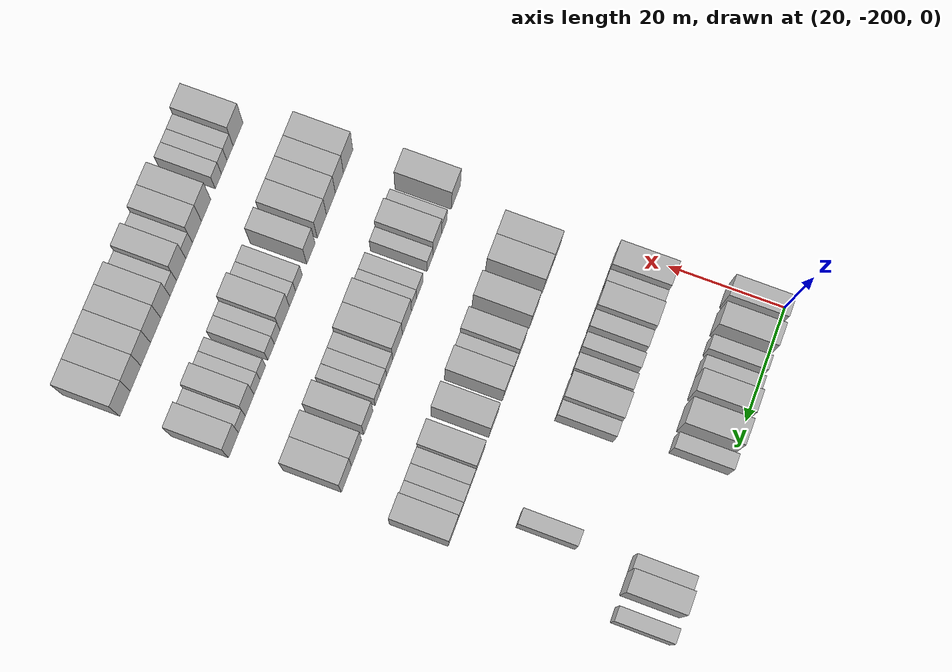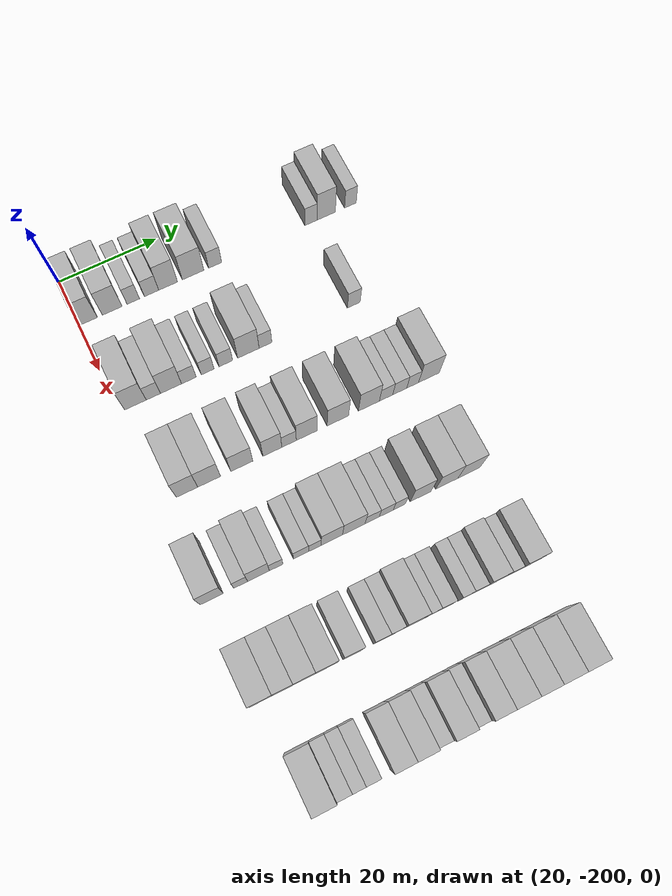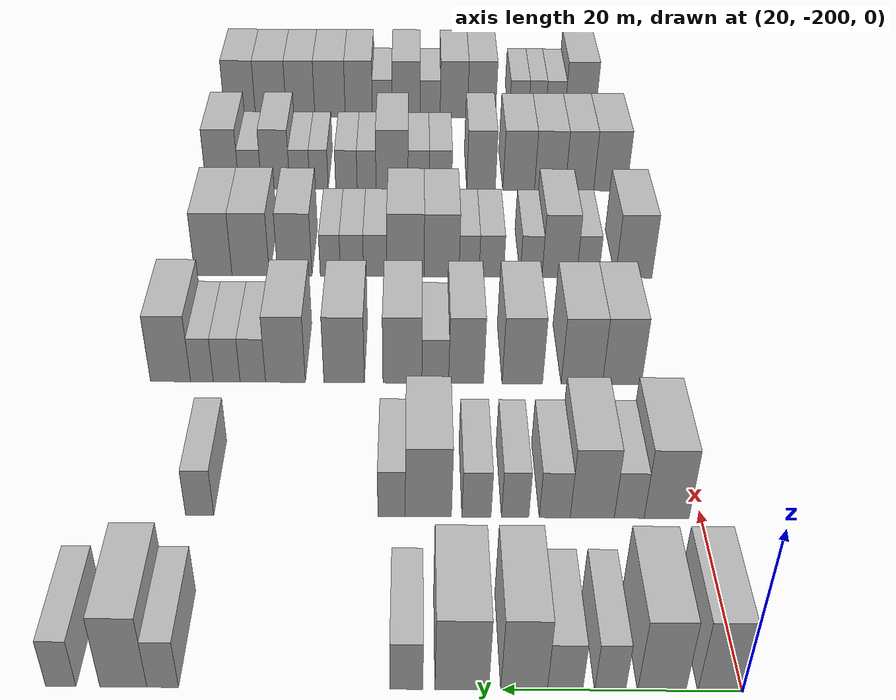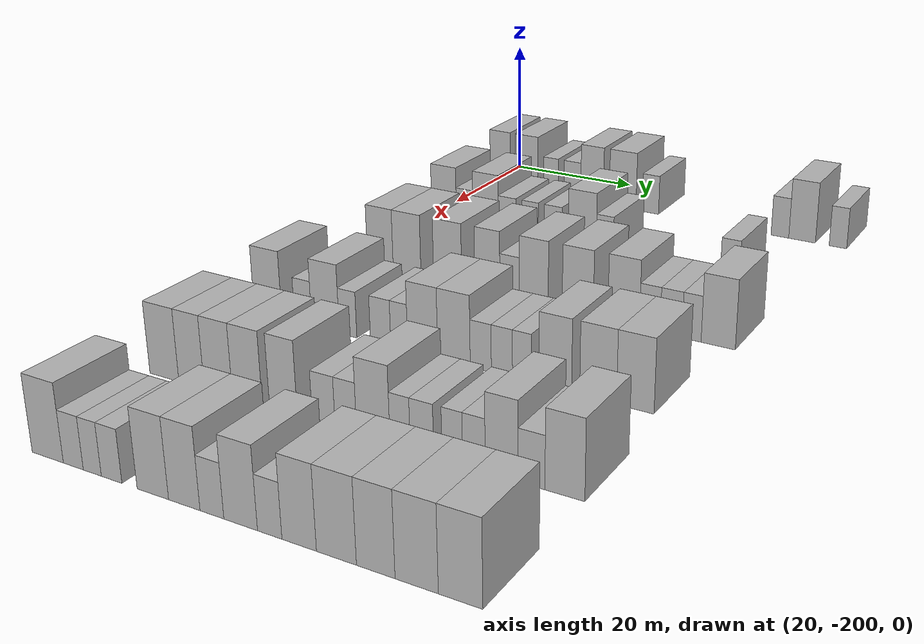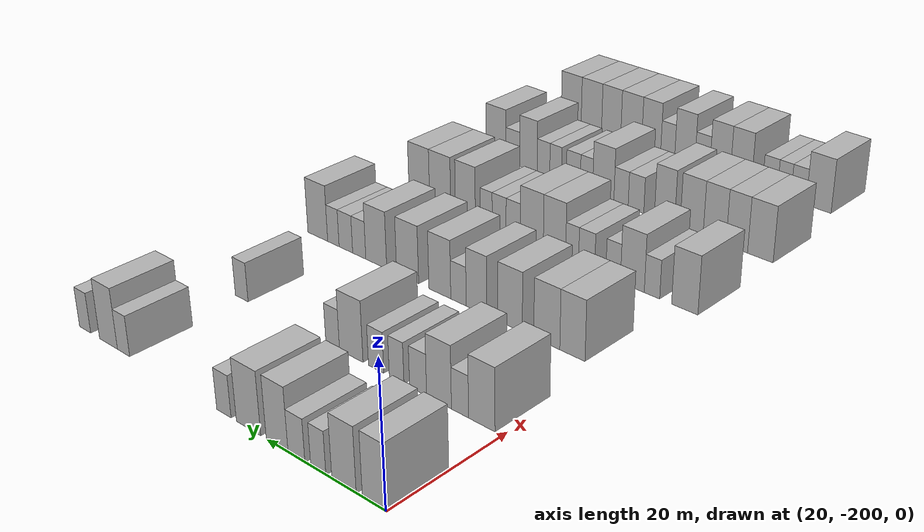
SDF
<sdf version="1.6">
 <world name="default">
  <model name="building_41">
   <static>1</static>
   <pose>25.0000 -198.0777 0 0.000000 0.000000 0.000000</pose>
   <link name="link">
    <pose>0 0 4.50 0 0 0</pose>
    <collision name="collision"><geometry><box><size>10.0000 3.6633 9.0000</size></box></geometry></collision>
    <visual name="visual">
     <cast_shadows>0</cast_shadows>
     <geometry><box><size>10.0000 3.6633 9.0000</size></box></geometry>
     <material>
      <script>
       <uri>model://HANNAS_wall/materials/scripts</uri>
       <uri>model://HANNAS_wall/materials/textures</uri>
       <name>vrc/HANNAS_wall</name>
      </script>
     </material>
    </visual>
   </link>
  </model>
  <model name="building_42">
   <static>1</static>
   <pose>25.0000 -193.2453 0 0.000000 0.000000 0.000000</pose>
   <link name="link">
    <pose>0 0 4.50 0 0 0</pose>
    <collision name="collision"><geometry><box><size>10.0000 4.0014 9.0000</size></box></geometry></collision>
    <visual name="visual">
     <cast_shadows>0</cast_shadows>
     <geometry><box><size>10.0000 4.0014 9.0000</size></box></geometry>
     <material>
      <script>
       <uri>model://HANNAS_wall/materials/scripts</uri>
       <uri>model://HANNAS_wall/materials/textures</uri>
       <name>vrc/HANNAS_wall</name>
      </script>
     </material>
    </visual>
   </link>
  </model>
  <model name="building_43">
   <static>1</static>
   <pose>25.0000 -188.9625 0 0.000000 0.000000 0.000000</pose>
   <link name="link">
    <pose>0 0 3.00 0 0 0</pose>
    <collision name="collision"><geometry><box><size>10.0000 2.5642 6.0000</size></box></geometry></collision>
    <visual name="visual">
     <cast_shadows>0</cast_shadows>
     <geometry><box><size>10.0000 2.5642 6.0000</size></box></geometry>
     <material>
      <script>
       <uri>model://HANNAS_wall/materials/scripts</uri>
       <uri>model://HANNAS_wall/materials/textures</uri>
       <name>vrc/HANNAS_wall</name>
      </script>
     </material>
    </visual>
   </link>
  </model>
  <model name="building_44">
   <static>1</static>
   <pose>25.0000 -185.2157 0 0.000000 0.000000 0.000000</pose>
   <link name="link">
    <pose>0 0 3.00 0 0 0</pose>
    <collision name="collision"><geometry><box><size>10.0000 2.9294 6.0000</size></box></geometry></collision>
    <visual name="visual">
     <cast_shadows>0</cast_shadows>
     <geometry><box><size>10.0000 2.9294 6.0000</size></box></geometry>
     <material>
      <script>
       <uri>model://HANNAS_wall/materials/scripts</uri>
       <uri>model://HANNAS_wall/materials/textures</uri>
       <name>vrc/HANNAS_wall</name>
      </script>
     </material>
    </visual>
   </link>
  </model>
  <model name="building_45">
   <static>1</static>
   <pose>25.0000 -181.8123 0 0.000000 0.000000 0.000000</pose>
   <link name="link">
    <pose>0 0 4.50 0 0 0</pose>
    <collision name="collision"><geometry><box><size>10.0000 3.8773 9.0000</size></box></geometry></collision>
    <visual name="visual">
     <cast_shadows>0</cast_shadows>
     <geometry><box><size>10.0000 3.8773 9.0000</size></box></geometry>
     <material>
      <script>
       <uri>model://HANNAS_wall/materials/scripts</uri>
       <uri>model://HANNAS_wall/materials/textures</uri>
       <name>vrc/HANNAS_wall</name>
      </script>
     </material>
    </visual>
   </link>
  </model>
  <model name="building_46">
   <static>1</static>
   <pose>25.0000 -176.6313 0 0.000000 0.000000 0.000000</pose>
   <link name="link">
    <pose>0 0 4.50 0 0 0</pose>
    <collision name="collision"><geometry><box><size>10.0000 4.4849 9.0000</size></box></geometry></collision>
    <visual name="visual">
     <cast_shadows>0</cast_shadows>
     <geometry><box><size>10.0000 4.4849 9.0000</size></box></geometry>
     <material>
      <script>
       <uri>model://HANNAS_wall/materials/scripts</uri>
       <uri>model://HANNAS_wall/materials/textures</uri>
       <name>vrc/HANNAS_wall</name>
      </script>
     </material>
    </visual>
   </link>
  </model>
  <model name="building_47">
   <static>1</static>
   <pose>25.0000 -172.0270 0 0.000000 0.000000 0.000000</pose>
   <link name="link">
    <pose>0 0 3.00 0 0 0</pose>
    <collision name="collision"><geometry><box><size>10.0000 2.7236 6.0000</size></box></geometry></collision>
    <visual name="visual">
     <cast_shadows>0</cast_shadows>
     <geometry><box><size>10.0000 2.7236 6.0000</size></box></geometry>
     <material>
      <script>
       <uri>model://HANNAS_wall/materials/scripts</uri>
       <uri>model://HANNAS_wall/materials/textures</uri>
       <name>vrc/HANNAS_wall</name>
      </script>
     </material>
    </visual>
   </link>
  </model>
  <model name="building_48">
   <static>1</static>
   <pose>25.0000 -151.7010 0 0.000000 0.000000 0.000000</pose>
   <link name="link">
    <pose>0 0 3.00 0 0 0</pose>
    <collision name="collision"><geometry><box><size>10.0000 2.6429 6.0000</size></box></geometry></collision>
    <visual name="visual">
     <cast_shadows>0</cast_shadows>
     <geometry><box><size>10.0000 2.6429 6.0000</size></box></geometry>
     <material>
      <script>
       <uri>model://HANNAS_wall/materials/scripts</uri>
       <uri>model://HANNAS_wall/materials/textures</uri>
       <name>vrc/HANNAS_wall</name>
      </script>
     </material>
    </visual>
   </link>
  </model>
  <model name="building_49">
   <static>1</static>
   <pose>25.0000 -148.4138 0 0.000000 0.000000 0.000000</pose>
   <link name="link">
    <pose>0 0 4.50 0 0 0</pose>
    <collision name="collision"><geometry><box><size>10.0000 3.9313 9.0000</size></box></geometry></collision>
    <visual name="visual">
     <cast_shadows>0</cast_shadows>
     <geometry><box><size>10.0000 3.9313 9.0000</size></box></geometry>
     <material>
      <script>
       <uri>model://HANNAS_wall/materials/scripts</uri>
       <uri>model://HANNAS_wall/materials/textures</uri>
       <name>vrc/HANNAS_wall</name>
      </script>
     </material>
    </visual>
   </link>
  </model>
  <model name="building_50">
   <static>1</static>
   <pose>25.0000 -143.1870 0 0.000000 0.000000 0.000000</pose>
   <link name="link">
    <pose>0 0 3.00 0 0 0</pose>
    <collision name="collision"><geometry><box><size>10.0000 2.5224 6.0000</size></box></geometry></collision>
    <visual name="visual">
     <cast_shadows>0</cast_shadows>
     <geometry><box><size>10.0000 2.5224 6.0000</size></box></geometry>
     <material>
      <script>
       <uri>model://HANNAS_wall/materials/scripts</uri>
       <uri>model://HANNAS_wall/materials/textures</uri>
       <name>vrc/HANNAS_wall</name>
      </script>
     </material>
    </visual>
   </link>
  </model>
  <model name="building_214">
   <static>1</static>
   <pose>44.0000 -196.6801 0 0.000000 0.000000 0.000000</pose>
   <link name="link">
    <pose>0 0 4.50 0 0 0</pose>
    <collision name="collision"><geometry><box><size>10.0000 4.2783 9.0000</size></box></geometry></collision>
    <visual name="visual">
     <cast_shadows>0</cast_shadows>
     <geometry><box><size>10.0000 4.2783 9.0000</size></box></geometry>
     <material>
      <script>
       <uri>model://HANNAS_wall/materials/scripts</uri>
       <uri>model://HANNAS_wall/materials/textures</uri>
       <name>vrc/HANNAS_wall</name>
      </script>
     </material>
    </visual>
   </link>
  </model>
  <model name="building_215">
   <static>1</static>
   <pose>44.0000 -193.1243 0 0.000000 0.000000 0.000000</pose>
   <link name="link">
    <pose>0 0 3.00 0 0 0</pose>
    <collision name="collision"><geometry><box><size>10.0000 2.8333 6.0000</size></box></geometry></collision>
    <visual name="visual">
     <cast_shadows>0</cast_shadows>
     <geometry><box><size>10.0000 2.8333 6.0000</size></box></geometry>
     <material>
      <script>
       <uri>model://HANNAS_wall/materials/scripts</uri>
       <uri>model://HANNAS_wall/materials/textures</uri>
       <name>vrc/HANNAS_wall</name>
      </script>
     </material>
    </visual>
   </link>
  </model>
  <model name="building_216">
   <static>1</static>
   <pose>44.0000 -189.6043 0 0.000000 0.000000 0.000000</pose>
   <link name="link">
    <pose>0 0 4.50 0 0 0</pose>
    <collision name="collision"><geometry><box><size>10.0000 4.2068 9.0000</size></box></geometry></collision>
    <visual name="visual">
     <cast_shadows>0</cast_shadows>
     <geometry><box><size>10.0000 4.2068 9.0000</size></box></geometry>
     <material>
      <script>
       <uri>model://HANNAS_wall/materials/scripts</uri>
       <uri>model://HANNAS_wall/materials/textures</uri>
       <name>vrc/HANNAS_wall</name>
      </script>
     </material>
    </visual>
   </link>
  </model>
  <model name="building_217">
   <static>1</static>
   <pose>44.0000 -186.0282 0 0.000000 0.000000 0.000000</pose>
   <link name="link">
    <pose>0 0 3.00 0 0 0</pose>
    <collision name="collision"><geometry><box><size>10.0000 2.9455 6.0000</size></box></geometry></collision>
    <visual name="visual">
     <cast_shadows>0</cast_shadows>
     <geometry><box><size>10.0000 2.9455 6.0000</size></box></geometry>
     <material>
      <script>
       <uri>model://HANNAS_wall/materials/scripts</uri>
       <uri>model://HANNAS_wall/materials/textures</uri>
       <name>vrc/HANNAS_wall</name>
      </script>
     </material>
    </visual>
   </link>
  </model>
  <model name="building_218">
   <static>1</static>
   <pose>44.0000 -182.2545 0 0.000000 0.000000 0.000000</pose>
   <link name="link">
    <pose>0 0 3.00 0 0 0</pose>
    <collision name="collision"><geometry><box><size>10.0000 2.6018 6.0000</size></box></geometry></collision>
    <visual name="visual">
     <cast_shadows>0</cast_shadows>
     <geometry><box><size>10.0000 2.6018 6.0000</size></box></geometry>
     <material>
      <script>
       <uri>model://HANNAS_wall/materials/scripts</uri>
       <uri>model://HANNAS_wall/materials/textures</uri>
       <name>vrc/HANNAS_wall</name>
      </script>
     </material>
    </visual>
   </link>
  </model>
  <model name="building_219">
   <static>1</static>
   <pose>44.0000 -178.5654 0 0.000000 0.000000 0.000000</pose>
   <link name="link">
    <pose>0 0 3.00 0 0 0</pose>
    <collision name="collision"><geometry><box><size>10.0000 2.7763 6.0000</size></box></geometry></collision>
    <visual name="visual">
     <cast_shadows>0</cast_shadows>
     <geometry><box><size>10.0000 2.7763 6.0000</size></box></geometry>
     <material>
      <script>
       <uri>model://HANNAS_wall/materials/scripts</uri>
       <uri>model://HANNAS_wall/materials/textures</uri>
       <name>vrc/HANNAS_wall</name>
      </script>
     </material>
    </visual>
   </link>
  </model>
  <model name="building_220">
   <static>1</static>
   <pose>44.0000 -173.9797 0 0.000000 0.000000 0.000000</pose>
   <link name="link">
    <pose>0 0 4.50 0 0 0</pose>
    <collision name="collision"><geometry><box><size>10.0000 4.3951 9.0000</size></box></geometry></collision>
    <visual name="visual">
     <cast_shadows>0</cast_shadows>
     <geometry><box><size>10.0000 4.3951 9.0000</size></box></geometry>
     <material>
      <script>
       <uri>model://HANNAS_wall/materials/scripts</uri>
       <uri>model://HANNAS_wall/materials/textures</uri>
       <name>vrc/HANNAS_wall</name>
      </script>
     </material>
    </visual>
   </link>
  </model>
  <model name="building_221">
   <static>1</static>
   <pose>44.0000 -170.4778 0 0.000000 0.000000 0.000000</pose>
   <link name="link">
    <pose>0 0 3.00 0 0 0</pose>
    <collision name="collision"><geometry><box><size>10.0000 2.6087 6.0000</size></box></geometry></collision>
    <visual name="visual">
     <cast_shadows>0</cast_shadows>
     <geometry><box><size>10.0000 2.6087 6.0000</size></box></geometry>
     <material>
      <script>
       <uri>model://HANNAS_wall/materials/scripts</uri>
       <uri>model://HANNAS_wall/materials/textures</uri>
       <name>vrc/HANNAS_wall</name>
      </script>
     </material>
    </visual>
   </link>
  </model>
  <model name="building_222">
   <static>1</static>
   <pose>44.0000 -152.1304 0 0.000000 0.000000 0.000000</pose>
   <link name="link">
    <pose>0 0 3.00 0 0 0</pose>
    <collision name="collision"><geometry><box><size>10.0000 2.6954 6.0000</size></box></geometry></collision>
    <visual name="visual">
     <cast_shadows>0</cast_shadows>
     <geometry><box><size>10.0000 2.6954 6.0000</size></box></geometry>
     <material>
      <script>
       <uri>model://HANNAS_wall/materials/scripts</uri>
       <uri>model://HANNAS_wall/materials/textures</uri>
       <name>vrc/HANNAS_wall</name>
      </script>
     </material>
    </visual>
   </link>
  </model>
  <model name="building_381">
   <static>1</static>
   <pose>63.0000 -194.9071 0 0.000000 0.000000 0.000000</pose>
   <link name="link">
    <pose>0 0 4.50 0 0 0</pose>
    <collision name="collision"><geometry><box><size>10.0000 4.1806 9.0000</size></box></geometry></collision>
    <visual name="visual">
     <cast_shadows>0</cast_shadows>
     <geometry><box><size>10.0000 4.1806 9.0000</size></box></geometry>
     <material>
      <script>
       <uri>model://HANNAS_wall/materials/scripts</uri>
       <uri>model://HANNAS_wall/materials/textures</uri>
       <name>vrc/HANNAS_wall</name>
      </script>
     </material>
    </visual>
   </link>
  </model>
  <model name="building_382">
   <static>1</static>
   <pose>63.0000 -190.5995 0 0.000000 0.000000 0.000000</pose>
   <link name="link">
    <pose>0 0 4.50 0 0 0</pose>
    <collision name="collision"><geometry><box><size>10.0000 4.4347 9.0000</size></box></geometry></collision>
    <visual name="visual">
     <cast_shadows>0</cast_shadows>
     <geometry><box><size>10.0000 4.4347 9.0000</size></box></geometry>
     <material>
      <script>
       <uri>model://HANNAS_wall/materials/scripts</uri>
       <uri>model://HANNAS_wall/materials/textures</uri>
       <name>vrc/HANNAS_wall</name>
      </script>
     </material>
    </visual>
   </link>
  </model>
  <model name="building_383">
   <static>1</static>
   <pose>63.0000 -184.2100 0 0.000000 0.000000 0.000000</pose>
   <link name="link">
    <pose>0 0 4.50 0 0 0</pose>
    <collision name="collision"><geometry><box><size>10.0000 4.3443 9.0000</size></box></geometry></collision>
    <visual name="visual">
     <cast_shadows>0</cast_shadows>
     <geometry><box><size>10.0000 4.3443 9.0000</size></box></geometry>
     <material>
      <script>
       <uri>model://HANNAS_wall/materials/scripts</uri>
       <uri>model://HANNAS_wall/materials/textures</uri>
       <name>vrc/HANNAS_wall</name>
      </script>
     </material>
    </visual>
   </link>
  </model>
  <model name="building_384">
   <static>1</static>
   <pose>63.0000 -178.1616 0 0.000000 0.000000 0.000000</pose>
   <link name="link">
    <pose>0 0 4.50 0 0 0</pose>
    <collision name="collision"><geometry><box><size>10.0000 3.7525 9.0000</size></box></geometry></collision>
    <visual name="visual">
     <cast_shadows>0</cast_shadows>
     <geometry><box><size>10.0000 3.7525 9.0000</size></box></geometry>
     <material>
      <script>
       <uri>model://HANNAS_wall/materials/scripts</uri>
       <uri>model://HANNAS_wall/materials/textures</uri>
       <name>vrc/HANNAS_wall</name>
      </script>
     </material>
    </visual>
   </link>
  </model>
  <model name="building_385">
   <static>1</static>
   <pose>63.0000 -174.8430 0 0.000000 0.000000 0.000000</pose>
   <link name="link">
    <pose>0 0 3.00 0 0 0</pose>
    <collision name="collision"><geometry><box><size>10.0000 2.8848 6.0000</size></box></geometry></collision>
    <visual name="visual">
     <cast_shadows>0</cast_shadows>
     <geometry><box><size>10.0000 2.8848 6.0000</size></box></geometry>
     <material>
      <script>
       <uri>model://HANNAS_wall/materials/scripts</uri>
       <uri>model://HANNAS_wall/materials/textures</uri>
       <name>vrc/HANNAS_wall</name>
      </script>
     </material>
    </visual>
   </link>
  </model>
  <model name="building_386">
   <static>1</static>
   <pose>63.0000 -171.3132 0 0.000000 0.000000 0.000000</pose>
   <link name="link">
    <pose>0 0 4.50 0 0 0</pose>
    <collision name="collision"><geometry><box><size>10.0000 4.1748 9.0000</size></box></geometry></collision>
    <visual name="visual">
     <cast_shadows>0</cast_shadows>
     <geometry><box><size>10.0000 4.1748 9.0000</size></box></geometry>
     <material>
      <script>
       <uri>model://HANNAS_wall/materials/scripts</uri>
       <uri>model://HANNAS_wall/materials/textures</uri>
       <name>vrc/HANNAS_wall</name>
      </script>
     </material>
    </visual>
   </link>
  </model>
  <model name="building_387">
   <static>1</static>
   <pose>63.0000 -165.0476 0 0.000000 0.000000 0.000000</pose>
   <link name="link">
    <pose>0 0 4.50 0 0 0</pose>
    <collision name="collision"><geometry><box><size>10.0000 4.3565 9.0000</size></box></geometry></collision>
    <visual name="visual">
     <cast_shadows>0</cast_shadows>
     <geometry><box><size>10.0000 4.3565 9.0000</size></box></geometry>
     <material>
      <script>
       <uri>model://HANNAS_wall/materials/scripts</uri>
       <uri>model://HANNAS_wall/materials/textures</uri>
       <name>vrc/HANNAS_wall</name>
      </script>
     </material>
    </visual>
   </link>
  </model>
  <model name="building_388">
   <static>1</static>
   <pose>63.0000 -158.7256 0 0.000000 0.000000 0.000000</pose>
   <link name="link">
    <pose>0 0 4.50 0 0 0</pose>
    <collision name="collision"><geometry><box><size>10.0000 4.2874 9.0000</size></box></geometry></collision>
    <visual name="visual">
     <cast_shadows>0</cast_shadows>
     <geometry><box><size>10.0000 4.2874 9.0000</size></box></geometry>
     <material>
      <script>
       <uri>model://HANNAS_wall/materials/scripts</uri>
       <uri>model://HANNAS_wall/materials/textures</uri>
       <name>vrc/HANNAS_wall</name>
      </script>
     </material>
    </visual>
   </link>
  </model>
  <model name="building_389">
   <static>1</static>
   <pose>63.0000 -155.2063 0 0.000000 0.000000 0.000000</pose>
   <link name="link">
    <pose>0 0 3.00 0 0 0</pose>
    <collision name="collision"><geometry><box><size>10.0000 2.7513 6.0000</size></box></geometry></collision>
    <visual name="visual">
     <cast_shadows>0</cast_shadows>
     <geometry><box><size>10.0000 2.7513 6.0000</size></box></geometry>
     <material>
      <script>
       <uri>model://HANNAS_wall/materials/scripts</uri>
       <uri>model://HANNAS_wall/materials/textures</uri>
       <name>vrc/HANNAS_wall</name>
      </script>
     </material>
    </visual>
   </link>
  </model>
  <model name="building_390">
   <static>1</static>
   <pose>63.0000 -152.3910 0 0.000000 0.000000 0.000000</pose>
   <link name="link">
    <pose>0 0 3.00 0 0 0</pose>
    <collision name="collision"><geometry><box><size>10.0000 2.8793 6.0000</size></box></geometry></collision>
    <visual name="visual">
     <cast_shadows>0</cast_shadows>
     <geometry><box><size>10.0000 2.8793 6.0000</size></box></geometry>
     <material>
      <script>
       <uri>model://HANNAS_wall/materials/scripts</uri>
       <uri>model://HANNAS_wall/materials/textures</uri>
       <name>vrc/HANNAS_wall</name>
      </script>
     </material>
    </visual>
   </link>
  </model>
  <model name="building_391">
   <static>1</static>
   <pose>63.0000 -149.7263 0 0.000000 0.000000 0.000000</pose>
   <link name="link">
    <pose>0 0 3.00 0 0 0</pose>
    <collision name="collision"><geometry><box><size>10.0000 2.4500 6.0000</size></box></geometry></collision>
    <visual name="visual">
     <cast_shadows>0</cast_shadows>
     <geometry><box><size>10.0000 2.4500 6.0000</size></box></geometry>
     <material>
      <script>
       <uri>model://HANNAS_wall/materials/scripts</uri>
       <uri>model://HANNAS_wall/materials/textures</uri>
       <name>vrc/HANNAS_wall</name>
      </script>
     </material>
    </visual>
   </link>
  </model>
  <model name="building_392">
   <static>1</static>
   <pose>63.0000 -146.3352 0 0.000000 0.000000 0.000000</pose>
   <link name="link">
    <pose>0 0 4.50 0 0 0</pose>
    <collision name="collision"><geometry><box><size>10.0000 4.3322 9.0000</size></box></geometry></collision>
    <visual name="visual">
     <cast_shadows>0</cast_shadows>
     <geometry><box><size>10.0000 4.3322 9.0000</size></box></geometry>
     <material>
      <script>
       <uri>model://HANNAS_wall/materials/scripts</uri>
       <uri>model://HANNAS_wall/materials/textures</uri>
       <name>vrc/HANNAS_wall</name>
      </script>
     </material>
    </visual>
   </link>
  </model>
  <model name="building_557">
   <static>1</static>
   <pose>82.0000 -198.7889 0 0.000000 0.000000 0.000000</pose>
   <link name="link">
    <pose>0 0 4.50 0 0 0</pose>
    <collision name="collision"><geometry><box><size>10.0000 4.3546 9.0000</size></box></geometry></collision>
    <visual name="visual">
     <cast_shadows>0</cast_shadows>
     <geometry><box><size>10.0000 4.3546 9.0000</size></box></geometry>
     <material>
      <script>
       <uri>model://HANNAS_wall/materials/scripts</uri>
       <uri>model://HANNAS_wall/materials/textures</uri>
       <name>vrc/HANNAS_wall</name>
      </script>
     </material>
    </visual>
   </link>
  </model>
  <model name="building_558">
   <static>1</static>
   <pose>82.0000 -193.2946 0 0.000000 0.000000 0.000000</pose>
   <link name="link">
    <pose>0 0 3.00 0 0 0</pose>
    <collision name="collision"><geometry><box><size>10.0000 2.6342 6.0000</size></box></geometry></collision>
    <visual name="visual">
     <cast_shadows>0</cast_shadows>
     <geometry><box><size>10.0000 2.6342 6.0000</size></box></geometry>
     <material>
      <script>
       <uri>model://HANNAS_wall/materials/scripts</uri>
       <uri>model://HANNAS_wall/materials/textures</uri>
       <name>vrc/HANNAS_wall</name>
      </script>
     </material>
    </visual>
   </link>
  </model>
  <model name="building_559">
   <static>1</static>
   <pose>82.0000 -189.9007 0 0.000000 0.000000 0.000000</pose>
   <link name="link">
    <pose>0 0 4.50 0 0 0</pose>
    <collision name="collision"><geometry><box><size>10.0000 4.1535 9.0000</size></box></geometry></collision>
    <visual name="visual">
     <cast_shadows>0</cast_shadows>
     <geometry><box><size>10.0000 4.1535 9.0000</size></box></geometry>
     <material>
      <script>
       <uri>model://HANNAS_wall/materials/scripts</uri>
       <uri>model://HANNAS_wall/materials/textures</uri>
       <name>vrc/HANNAS_wall</name>
      </script>
     </material>
    </visual>
   </link>
  </model>
  <model name="building_560">
   <static>1</static>
   <pose>82.0000 -186.5278 0 0.000000 0.000000 0.000000</pose>
   <link name="link">
    <pose>0 0 3.00 0 0 0</pose>
    <collision name="collision"><geometry><box><size>10.0000 2.5923 6.0000</size></box></geometry></collision>
    <visual name="visual">
     <cast_shadows>0</cast_shadows>
     <geometry><box><size>10.0000 2.5923 6.0000</size></box></geometry>
     <material>
      <script>
       <uri>model://HANNAS_wall/materials/scripts</uri>
       <uri>model://HANNAS_wall/materials/textures</uri>
       <name>vrc/HANNAS_wall</name>
      </script>
     </material>
    </visual>
   </link>
  </model>
  <model name="building_561">
   <static>1</static>
   <pose>82.0000 -181.7649 0 0.000000 0.000000 0.000000</pose>
   <link name="link">
    <pose>0 0 3.00 0 0 0</pose>
    <collision name="collision"><geometry><box><size>10.0000 2.9334 6.0000</size></box></geometry></collision>
    <visual name="visual">
     <cast_shadows>0</cast_shadows>
     <geometry><box><size>10.0000 2.9334 6.0000</size></box></geometry>
     <material>
      <script>
       <uri>model://HANNAS_wall/materials/scripts</uri>
       <uri>model://HANNAS_wall/materials/textures</uri>
       <name>vrc/HANNAS_wall</name>
      </script>
     </material>
    </visual>
   </link>
  </model>
  <model name="building_562">
   <static>1</static>
   <pose>82.0000 -179.0963 0 0.000000 0.000000 0.000000</pose>
   <link name="link">
    <pose>0 0 3.00 0 0 0</pose>
    <collision name="collision"><geometry><box><size>10.0000 2.4038 6.0000</size></box></geometry></collision>
    <visual name="visual">
     <cast_shadows>0</cast_shadows>
     <geometry><box><size>10.0000 2.4038 6.0000</size></box></geometry>
     <material>
      <script>
       <uri>model://HANNAS_wall/materials/scripts</uri>
       <uri>model://HANNAS_wall/materials/textures</uri>
       <name>vrc/HANNAS_wall</name>
      </script>
     </material>
    </visual>
   </link>
  </model>
  <model name="building_563">
   <static>1</static>
   <pose>82.0000 -175.7986 0 0.000000 0.000000 0.000000</pose>
   <link name="link">
    <pose>0 0 4.50 0 0 0</pose>
    <collision name="collision"><geometry><box><size>10.0000 4.1916 9.0000</size></box></geometry></collision>
    <visual name="visual">
     <cast_shadows>0</cast_shadows>
     <geometry><box><size>10.0000 4.1916 9.0000</size></box></geometry>
     <material>
      <script>
       <uri>model://HANNAS_wall/materials/scripts</uri>
       <uri>model://HANNAS_wall/materials/textures</uri>
       <name>vrc/HANNAS_wall</name>
      </script>
     </material>
    </visual>
   </link>
  </model>
  <model name="building_564">
   <static>1</static>
   <pose>82.0000 -171.4952 0 0.000000 0.000000 0.000000</pose>
   <link name="link">
    <pose>0 0 4.50 0 0 0</pose>
    <collision name="collision"><geometry><box><size>10.0000 4.4152 9.0000</size></box></geometry></collision>
    <visual name="visual">
     <cast_shadows>0</cast_shadows>
     <geometry><box><size>10.0000 4.4152 9.0000</size></box></geometry>
     <material>
      <script>
       <uri>model://HANNAS_wall/materials/scripts</uri>
       <uri>model://HANNAS_wall/materials/textures</uri>
       <name>vrc/HANNAS_wall</name>
      </script>
     </material>
    </visual>
   </link>
  </model>
  <model name="building_565">
   <static>1</static>
   <pose>82.0000 -167.8827 0 0.000000 0.000000 0.000000</pose>
   <link name="link">
    <pose>0 0 3.00 0 0 0</pose>
    <collision name="collision"><geometry><box><size>10.0000 2.8099 6.0000</size></box></geometry></collision>
    <visual name="visual">
     <cast_shadows>0</cast_shadows>
     <geometry><box><size>10.0000 2.8099 6.0000</size></box></geometry>
     <material>
      <script>
       <uri>model://HANNAS_wall/materials/scripts</uri>
       <uri>model://HANNAS_wall/materials/textures</uri>
       <name>vrc/HANNAS_wall</name>
      </script>
     </material>
    </visual>
   </link>
  </model>
  <model name="building_566">
   <static>1</static>
   <pose>82.0000 -165.0918 0 0.000000 0.000000 0.000000</pose>
   <link name="link">
    <pose>0 0 3.00 0 0 0</pose>
    <collision name="collision"><geometry><box><size>10.0000 2.7718 6.0000</size></box></geometry></collision>
    <visual name="visual">
     <cast_shadows>0</cast_shadows>
     <geometry><box><size>10.0000 2.7718 6.0000</size></box></geometry>
     <material>
      <script>
       <uri>model://HANNAS_wall/materials/scripts</uri>
       <uri>model://HANNAS_wall/materials/textures</uri>
       <name>vrc/HANNAS_wall</name>
      </script>
     </material>
    </visual>
   </link>
  </model>
  <model name="building_567">
   <static>1</static>
   <pose>82.0000 -162.4982 0 0.000000 0.000000 0.000000</pose>
   <link name="link">
    <pose>0 0 3.00 0 0 0</pose>
    <collision name="collision"><geometry><box><size>10.0000 2.4152 6.0000</size></box></geometry></collision>
    <visual name="visual">
     <cast_shadows>0</cast_shadows>
     <geometry><box><size>10.0000 2.4152 6.0000</size></box></geometry>
     <material>
      <script>
       <uri>model://HANNAS_wall/materials/scripts</uri>
       <uri>model://HANNAS_wall/materials/textures</uri>
       <name>vrc/HANNAS_wall</name>
      </script>
     </material>
    </visual>
   </link>
  </model>
  <model name="building_568">
   <static>1</static>
   <pose>82.0000 -158.2404 0 0.000000 0.000000 0.000000</pose>
   <link name="link">
    <pose>0 0 4.50 0 0 0</pose>
    <collision name="collision"><geometry><box><size>10.0000 4.1005 9.0000</size></box></geometry></collision>
    <visual name="visual">
     <cast_shadows>0</cast_shadows>
     <geometry><box><size>10.0000 4.1005 9.0000</size></box></geometry>
     <material>
      <script>
       <uri>model://HANNAS_wall/materials/scripts</uri>
       <uri>model://HANNAS_wall/materials/textures</uri>
       <name>vrc/HANNAS_wall</name>
      </script>
     </material>
    </visual>
   </link>
  </model>
  <model name="building_569">
   <static>1</static>
   <pose>82.0000 -152.9478 0 0.000000 0.000000 0.000000</pose>
   <link name="link">
    <pose>0 0 4.50 0 0 0</pose>
    <collision name="collision"><geometry><box><size>10.0000 4.4846 9.0000</size></box></geometry></collision>
    <visual name="visual">
     <cast_shadows>0</cast_shadows>
     <geometry><box><size>10.0000 4.4846 9.0000</size></box></geometry>
     <material>
      <script>
       <uri>model://HANNAS_wall/materials/scripts</uri>
       <uri>model://HANNAS_wall/materials/textures</uri>
       <name>vrc/HANNAS_wall</name>
      </script>
     </material>
    </visual>
   </link>
  </model>
  <model name="building_570">
   <static>1</static>
   <pose>82.0000 -148.4733 0 0.000000 0.000000 0.000000</pose>
   <link name="link">
    <pose>0 0 4.50 0 0 0</pose>
    <collision name="collision"><geometry><box><size>10.0000 4.4645 9.0000</size></box></geometry></collision>
    <visual name="visual">
     <cast_shadows>0</cast_shadows>
     <geometry><box><size>10.0000 4.4645 9.0000</size></box></geometry>
     <material>
      <script>
       <uri>model://HANNAS_wall/materials/scripts</uri>
       <uri>model://HANNAS_wall/materials/textures</uri>
       <name>vrc/HANNAS_wall</name>
      </script>
     </material>
    </visual>
   </link>
  </model>
  <model name="building_733">
   <static>1</static>
   <pose>101.0000 -198.3162 0 0.000000 0.000000 0.000000</pose>
   <link name="link">
    <pose>0 0 4.50 0 0 0</pose>
    <collision name="collision"><geometry><box><size>10.0000 4.3406 9.0000</size></box></geometry></collision>
    <visual name="visual">
     <cast_shadows>0</cast_shadows>
     <geometry><box><size>10.0000 4.3406 9.0000</size></box></geometry>
     <material>
      <script>
       <uri>model://HANNAS_wall/materials/scripts</uri>
       <uri>model://HANNAS_wall/materials/textures</uri>
       <name>vrc/HANNAS_wall</name>
      </script>
     </material>
    </visual>
   </link>
  </model>
  <model name="building_734">
   <static>1</static>
   <pose>101.0000 -194.2787 0 0.000000 0.000000 0.000000</pose>
   <link name="link">
    <pose>0 0 4.50 0 0 0</pose>
    <collision name="collision"><geometry><box><size>10.0000 3.7344 9.0000</size></box></geometry></collision>
    <visual name="visual">
     <cast_shadows>0</cast_shadows>
     <geometry><box><size>10.0000 3.7344 9.0000</size></box></geometry>
     <material>
      <script>
       <uri>model://HANNAS_wall/materials/scripts</uri>
       <uri>model://HANNAS_wall/materials/textures</uri>
       <name>vrc/HANNAS_wall</name>
      </script>
     </material>
    </visual>
   </link>
  </model>
  <model name="building_735">
   <static>1</static>
   <pose>101.0000 -190.3816 0 0.000000 0.000000 0.000000</pose>
   <link name="link">
    <pose>0 0 4.50 0 0 0</pose>
    <collision name="collision"><geometry><box><size>10.0000 4.0599 9.0000</size></box></geometry></collision>
    <visual name="visual">
     <cast_shadows>0</cast_shadows>
     <geometry><box><size>10.0000 4.0599 9.0000</size></box></geometry>
     <material>
      <script>
       <uri>model://HANNAS_wall/materials/scripts</uri>
       <uri>model://HANNAS_wall/materials/textures</uri>
       <name>vrc/HANNAS_wall</name>
      </script>
     </material>
    </visual>
   </link>
  </model>
  <model name="building_736">
   <static>1</static>
   <pose>101.0000 -186.2682 0 0.000000 0.000000 0.000000</pose>
   <link name="link">
    <pose>0 0 4.50 0 0 0</pose>
    <collision name="collision"><geometry><box><size>10.0000 4.1668 9.0000</size></box></geometry></collision>
    <visual name="visual">
     <cast_shadows>0</cast_shadows>
     <geometry><box><size>10.0000 4.1668 9.0000</size></box></geometry>
     <material>
      <script>
       <uri>model://HANNAS_wall/materials/scripts</uri>
       <uri>model://HANNAS_wall/materials/textures</uri>
       <name>vrc/HANNAS_wall</name>
      </script>
     </material>
    </visual>
   </link>
  </model>
  <model name="building_737">
   <static>1</static>
   <pose>101.0000 -181.3071 0 0.000000 0.000000 0.000000</pose>
   <link name="link">
    <pose>0 0 4.50 0 0 0</pose>
    <collision name="collision"><geometry><box><size>10.0000 3.7555 9.0000</size></box></geometry></collision>
    <visual name="visual">
     <cast_shadows>0</cast_shadows>
     <geometry><box><size>10.0000 3.7555 9.0000</size></box></geometry>
     <material>
      <script>
       <uri>model://HANNAS_wall/materials/scripts</uri>
       <uri>model://HANNAS_wall/materials/textures</uri>
       <name>vrc/HANNAS_wall</name>
      </script>
     </material>
    </visual>
   </link>
  </model>
  <model name="building_738">
   <static>1</static>
   <pose>101.0000 -175.9362 0 0.000000 0.000000 0.000000</pose>
   <link name="link">
    <pose>0 0 3.00 0 0 0</pose>
    <collision name="collision"><geometry><box><size>10.0000 2.9862 6.0000</size></box></geometry></collision>
    <visual name="visual">
     <cast_shadows>0</cast_shadows>
     <geometry><box><size>10.0000 2.9862 6.0000</size></box></geometry>
     <material>
      <script>
       <uri>model://HANNAS_wall/materials/scripts</uri>
       <uri>model://HANNAS_wall/materials/textures</uri>
       <name>vrc/HANNAS_wall</name>
      </script>
     </material>
    </visual>
   </link>
  </model>
  <model name="building_739">
   <static>1</static>
   <pose>101.0000 -173.0580 0 0.000000 0.000000 0.000000</pose>
   <link name="link">
    <pose>0 0 3.00 0 0 0</pose>
    <collision name="collision"><geometry><box><size>10.0000 2.7702 6.0000</size></box></geometry></collision>
    <visual name="visual">
     <cast_shadows>0</cast_shadows>
     <geometry><box><size>10.0000 2.7702 6.0000</size></box></geometry>
     <material>
      <script>
       <uri>model://HANNAS_wall/materials/scripts</uri>
       <uri>model://HANNAS_wall/materials/textures</uri>
       <name>vrc/HANNAS_wall</name>
      </script>
     </material>
    </visual>
   </link>
  </model>
  <model name="building_740">
   <static>1</static>
   <pose>101.0000 -169.5715 0 0.000000 0.000000 0.000000</pose>
   <link name="link">
    <pose>0 0 4.50 0 0 0</pose>
    <collision name="collision"><geometry><box><size>10.0000 4.2030 9.0000</size></box></geometry></collision>
    <visual name="visual">
     <cast_shadows>0</cast_shadows>
     <geometry><box><size>10.0000 4.2030 9.0000</size></box></geometry>
     <material>
      <script>
       <uri>model://HANNAS_wall/materials/scripts</uri>
       <uri>model://HANNAS_wall/materials/textures</uri>
       <name>vrc/HANNAS_wall</name>
      </script>
     </material>
    </visual>
   </link>
  </model>
  <model name="building_741">
   <static>1</static>
   <pose>101.0000 -166.2262 0 0.000000 0.000000 0.000000</pose>
   <link name="link">
    <pose>0 0 3.00 0 0 0</pose>
    <collision name="collision"><geometry><box><size>10.0000 2.4875 6.0000</size></box></geometry></collision>
    <visual name="visual">
     <cast_shadows>0</cast_shadows>
     <geometry><box><size>10.0000 2.4875 6.0000</size></box></geometry>
     <material>
      <script>
       <uri>model://HANNAS_wall/materials/scripts</uri>
       <uri>model://HANNAS_wall/materials/textures</uri>
       <name>vrc/HANNAS_wall</name>
      </script>
     </material>
    </visual>
   </link>
  </model>
  <model name="building_742">
   <static>1</static>
   <pose>101.0000 -163.5640 0 0.000000 0.000000 0.000000</pose>
   <link name="link">
    <pose>0 0 3.00 0 0 0</pose>
    <collision name="collision"><geometry><box><size>10.0000 2.8369 6.0000</size></box></geometry></collision>
    <visual name="visual">
     <cast_shadows>0</cast_shadows>
     <geometry><box><size>10.0000 2.8369 6.0000</size></box></geometry>
     <material>
      <script>
       <uri>model://HANNAS_wall/materials/scripts</uri>
       <uri>model://HANNAS_wall/materials/textures</uri>
       <name>vrc/HANNAS_wall</name>
      </script>
     </material>
    </visual>
   </link>
  </model>
  <model name="building_743">
   <static>1</static>
   <pose>101.0000 -159.9363 0 0.000000 0.000000 0.000000</pose>
   <link name="link">
    <pose>0 0 3.00 0 0 0</pose>
    <collision name="collision"><geometry><box><size>10.0000 2.4185 6.0000</size></box></geometry></collision>
    <visual name="visual">
     <cast_shadows>0</cast_shadows>
     <geometry><box><size>10.0000 2.4185 6.0000</size></box></geometry>
     <material>
      <script>
       <uri>model://HANNAS_wall/materials/scripts</uri>
       <uri>model://HANNAS_wall/materials/textures</uri>
       <name>vrc/HANNAS_wall</name>
      </script>
     </material>
    </visual>
   </link>
  </model>
  <model name="building_744">
   <static>1</static>
   <pose>101.0000 -157.4082 0 0.000000 0.000000 0.000000</pose>
   <link name="link">
    <pose>0 0 3.00 0 0 0</pose>
    <collision name="collision"><geometry><box><size>10.0000 2.6378 6.0000</size></box></geometry></collision>
    <visual name="visual">
     <cast_shadows>0</cast_shadows>
     <geometry><box><size>10.0000 2.6378 6.0000</size></box></geometry>
     <material>
      <script>
       <uri>model://HANNAS_wall/materials/scripts</uri>
       <uri>model://HANNAS_wall/materials/textures</uri>
       <name>vrc/HANNAS_wall</name>
      </script>
     </material>
    </visual>
   </link>
  </model>
  <model name="building_745">
   <static>1</static>
   <pose>101.0000 -154.2168 0 0.000000 0.000000 0.000000</pose>
   <link name="link">
    <pose>0 0 4.50 0 0 0</pose>
    <collision name="collision"><geometry><box><size>10.0000 3.7450 9.0000</size></box></geometry></collision>
    <visual name="visual">
     <cast_shadows>0</cast_shadows>
     <geometry><box><size>10.0000 3.7450 9.0000</size></box></geometry>
     <material>
      <script>
       <uri>model://HANNAS_wall/materials/scripts</uri>
       <uri>model://HANNAS_wall/materials/textures</uri>
       <name>vrc/HANNAS_wall</name>
      </script>
     </material>
    </visual>
   </link>
  </model>
  <model name="building_746">
   <static>1</static>
   <pose>101.0000 -150.8602 0 0.000000 0.000000 0.000000</pose>
   <link name="link">
    <pose>0 0 3.00 0 0 0</pose>
    <collision name="collision"><geometry><box><size>10.0000 2.9681 6.0000</size></box></geometry></collision>
    <visual name="visual">
     <cast_shadows>0</cast_shadows>
     <geometry><box><size>10.0000 2.9681 6.0000</size></box></geometry>
     <material>
      <script>
       <uri>model://HANNAS_wall/materials/scripts</uri>
       <uri>model://HANNAS_wall/materials/textures</uri>
       <name>vrc/HANNAS_wall</name>
      </script>
     </material>
    </visual>
   </link>
  </model>
  <model name="building_747">
   <static>1</static>
   <pose>101.0000 -147.2156 0 0.000000 0.000000 0.000000</pose>
   <link name="link">
    <pose>0 0 4.50 0 0 0</pose>
    <collision name="collision"><geometry><box><size>10.0000 4.3211 9.0000</size></box></geometry></collision>
    <visual name="visual">
     <cast_shadows>0</cast_shadows>
     <geometry><box><size>10.0000 4.3211 9.0000</size></box></geometry>
     <material>
      <script>
       <uri>model://HANNAS_wall/materials/scripts</uri>
       <uri>model://HANNAS_wall/materials/textures</uri>
       <name>vrc/HANNAS_wall</name>
      </script>
     </material>
    </visual>
   </link>
  </model>
  <model name="building_902">
   <static>1</static>
   <pose>120.0000 -196.2953 0 0.000000 0.000000 0.000000</pose>
   <link name="link">
    <pose>0 0 4.50 0 0 0</pose>
    <collision name="collision"><geometry><box><size>10.0000 4.4043 9.0000</size></box></geometry></collision>
    <visual name="visual">
     <cast_shadows>0</cast_shadows>
     <geometry><box><size>10.0000 4.4043 9.0000</size></box></geometry>
     <material>
      <script>
       <uri>model://HANNAS_wall/materials/scripts</uri>
       <uri>model://HANNAS_wall/materials/textures</uri>
       <name>vrc/HANNAS_wall</name>
      </script>
     </material>
    </visual>
   </link>
  </model>
  <model name="building_903">
   <static>1</static>
   <pose>120.0000 -192.7183 0 0.000000 0.000000 0.000000</pose>
   <link name="link">
    <pose>0 0 3.00 0 0 0</pose>
    <collision name="collision"><geometry><box><size>10.0000 2.7497 6.0000</size></box></geometry></collision>
    <visual name="visual">
     <cast_shadows>0</cast_shadows>
     <geometry><box><size>10.0000 2.7497 6.0000</size></box></geometry>
     <material>
      <script>
       <uri>model://HANNAS_wall/materials/scripts</uri>
       <uri>model://HANNAS_wall/materials/textures</uri>
       <name>vrc/HANNAS_wall</name>
      </script>
     </material>
    </visual>
   </link>
  </model>
  <model name="building_904">
   <static>1</static>
   <pose>120.0000 -190.1188 0 0.000000 0.000000 0.000000</pose>
   <link name="link">
    <pose>0 0 3.00 0 0 0</pose>
    <collision name="collision"><geometry><box><size>10.0000 2.4492 6.0000</size></box></geometry></collision>
    <visual name="visual">
     <cast_shadows>0</cast_shadows>
     <geometry><box><size>10.0000 2.4492 6.0000</size></box></geometry>
     <material>
      <script>
       <uri>model://HANNAS_wall/materials/scripts</uri>
       <uri>model://HANNAS_wall/materials/textures</uri>
       <name>vrc/HANNAS_wall</name>
      </script>
     </material>
    </visual>
   </link>
  </model>
  <model name="building_905">
   <static>1</static>
   <pose>120.0000 -187.5216 0 0.000000 0.000000 0.000000</pose>
   <link name="link">
    <pose>0 0 3.00 0 0 0</pose>
    <collision name="collision"><geometry><box><size>10.0000 2.7451 6.0000</size></box></geometry></collision>
    <visual name="visual">
     <cast_shadows>0</cast_shadows>
     <geometry><box><size>10.0000 2.7451 6.0000</size></box></geometry>
     <material>
      <script>
       <uri>model://HANNAS_wall/materials/scripts</uri>
       <uri>model://HANNAS_wall/materials/textures</uri>
       <name>vrc/HANNAS_wall</name>
      </script>
     </material>
    </visual>
   </link>
  </model>
  <model name="building_906">
   <static>1</static>
   <pose>120.0000 -182.1299 0 0.000000 0.000000 0.000000</pose>
   <link name="link">
    <pose>0 0 4.50 0 0 0</pose>
    <collision name="collision"><geometry><box><size>10.0000 4.0385 9.0000</size></box></geometry></collision>
    <visual name="visual">
     <cast_shadows>0</cast_shadows>
     <geometry><box><size>10.0000 4.0385 9.0000</size></box></geometry>
     <material>
      <script>
       <uri>model://HANNAS_wall/materials/scripts</uri>
       <uri>model://HANNAS_wall/materials/textures</uri>
       <name>vrc/HANNAS_wall</name>
      </script>
     </material>
    </visual>
   </link>
  </model>
  <model name="building_907">
   <static>1</static>
   <pose>120.0000 -178.1436 0 0.000000 0.000000 0.000000</pose>
   <link name="link">
    <pose>0 0 4.50 0 0 0</pose>
    <collision name="collision"><geometry><box><size>10.0000 3.9341 9.0000</size></box></geometry></collision>
    <visual name="visual">
     <cast_shadows>0</cast_shadows>
     <geometry><box><size>10.0000 3.9341 9.0000</size></box></geometry>
     <material>
      <script>
       <uri>model://HANNAS_wall/materials/scripts</uri>
       <uri>model://HANNAS_wall/materials/textures</uri>
       <name>vrc/HANNAS_wall</name>
      </script>
     </material>
    </visual>
   </link>
  </model>
  <model name="building_908">
   <static>1</static>
   <pose>120.0000 -174.7240 0 0.000000 0.000000 0.000000</pose>
   <link name="link">
    <pose>0 0 3.00 0 0 0</pose>
    <collision name="collision"><geometry><box><size>10.0000 2.9052 6.0000</size></box></geometry></collision>
    <visual name="visual">
     <cast_shadows>0</cast_shadows>
     <geometry><box><size>10.0000 2.9052 6.0000</size></box></geometry>
     <material>
      <script>
       <uri>model://HANNAS_wall/materials/scripts</uri>
       <uri>model://HANNAS_wall/materials/textures</uri>
       <name>vrc/HANNAS_wall</name>
      </script>
     </material>
    </visual>
   </link>
  </model>
  <model name="building_909">
   <static>1</static>
   <pose>120.0000 -171.2687 0 0.000000 0.000000 0.000000</pose>
   <link name="link">
    <pose>0 0 4.50 0 0 0</pose>
    <collision name="collision"><geometry><box><size>10.0000 4.0054 9.0000</size></box></geometry></collision>
    <visual name="visual">
     <cast_shadows>0</cast_shadows>
     <geometry><box><size>10.0000 4.0054 9.0000</size></box></geometry>
     <material>
      <script>
       <uri>model://HANNAS_wall/materials/scripts</uri>
       <uri>model://HANNAS_wall/materials/textures</uri>
       <name>vrc/HANNAS_wall</name>
      </script>
     </material>
    </visual>
   </link>
  </model>
  <model name="building_910">
   <static>1</static>
   <pose>120.0000 -167.8485 0 0.000000 0.000000 0.000000</pose>
   <link name="link">
    <pose>0 0 3.00 0 0 0</pose>
    <collision name="collision"><geometry><box><size>10.0000 2.8350 6.0000</size></box></geometry></collision>
    <visual name="visual">
     <cast_shadows>0</cast_shadows>
     <geometry><box><size>10.0000 2.8350 6.0000</size></box></geometry>
     <material>
      <script>
       <uri>model://HANNAS_wall/materials/scripts</uri>
       <uri>model://HANNAS_wall/materials/textures</uri>
       <name>vrc/HANNAS_wall</name>
      </script>
     </material>
    </visual>
   </link>
  </model>
  <model name="building_911">
   <static>1</static>
   <pose>120.0000 -164.4761 0 0.000000 0.000000 0.000000</pose>
   <link name="link">
    <pose>0 0 4.50 0 0 0</pose>
    <collision name="collision"><geometry><box><size>10.0000 3.9099 9.0000</size></box></geometry></collision>
    <visual name="visual">
     <cast_shadows>0</cast_shadows>
     <geometry><box><size>10.0000 3.9099 9.0000</size></box></geometry>
     <material>
      <script>
       <uri>model://HANNAS_wall/materials/scripts</uri>
       <uri>model://HANNAS_wall/materials/textures</uri>
       <name>vrc/HANNAS_wall</name>
      </script>
     </material>
    </visual>
   </link>
  </model>
  <model name="building_912">
   <static>1</static>
   <pose>120.0000 -160.3260 0 0.000000 0.000000 0.000000</pose>
   <link name="link">
    <pose>0 0 4.50 0 0 0</pose>
    <collision name="collision"><geometry><box><size>10.0000 4.3903 9.0000</size></box></geometry></collision>
    <visual name="visual">
     <cast_shadows>0</cast_shadows>
     <geometry><box><size>10.0000 4.3903 9.0000</size></box></geometry>
     <material>
      <script>
       <uri>model://HANNAS_wall/materials/scripts</uri>
       <uri>model://HANNAS_wall/materials/textures</uri>
       <name>vrc/HANNAS_wall</name>
      </script>
     </material>
    </visual>
   </link>
  </model>
  <model name="building_913">
   <static>1</static>
   <pose>120.0000 -156.0760 0 0.000000 0.000000 0.000000</pose>
   <link name="link">
    <pose>0 0 4.50 0 0 0</pose>
    <collision name="collision"><geometry><box><size>10.0000 4.1098 9.0000</size></box></geometry></collision>
    <visual name="visual">
     <cast_shadows>0</cast_shadows>
     <geometry><box><size>10.0000 4.1098 9.0000</size></box></geometry>
     <material>
      <script>
       <uri>model://HANNAS_wall/materials/scripts</uri>
       <uri>model://HANNAS_wall/materials/textures</uri>
       <name>vrc/HANNAS_wall</name>
      </script>
     </material>
    </visual>
   </link>
  </model>
  <model name="building_914">
   <static>1</static>
   <pose>120.0000 -151.7968 0 0.000000 0.000000 0.000000</pose>
   <link name="link">
    <pose>0 0 4.50 0 0 0</pose>
    <collision name="collision"><geometry><box><size>10.0000 4.4487 9.0000</size></box></geometry></collision>
    <visual name="visual">
     <cast_shadows>0</cast_shadows>
     <geometry><box><size>10.0000 4.4487 9.0000</size></box></geometry>
     <material>
      <script>
       <uri>model://HANNAS_wall/materials/scripts</uri>
       <uri>model://HANNAS_wall/materials/textures</uri>
       <name>vrc/HANNAS_wall</name>
      </script>
     </material>
    </visual>
   </link>
  </model>
  <model name="building_915">
   <static>1</static>
   <pose>120.0000 -147.3581 0 0.000000 0.000000 0.000000</pose>
   <link name="link">
    <pose>0 0 4.50 0 0 0</pose>
    <collision name="collision"><geometry><box><size>10.0000 4.4286 9.0000</size></box></geometry></collision>
    <visual name="visual">
     <cast_shadows>0</cast_shadows>
     <geometry><box><size>10.0000 4.4286 9.0000</size></box></geometry>
     <material>
      <script>
       <uri>model://HANNAS_wall/materials/scripts</uri>
       <uri>model://HANNAS_wall/materials/textures</uri>
       <name>vrc/HANNAS_wall</name>
      </script>
     </material>
    </visual>
   </link>
  </model>
 </world>
</sdf>
